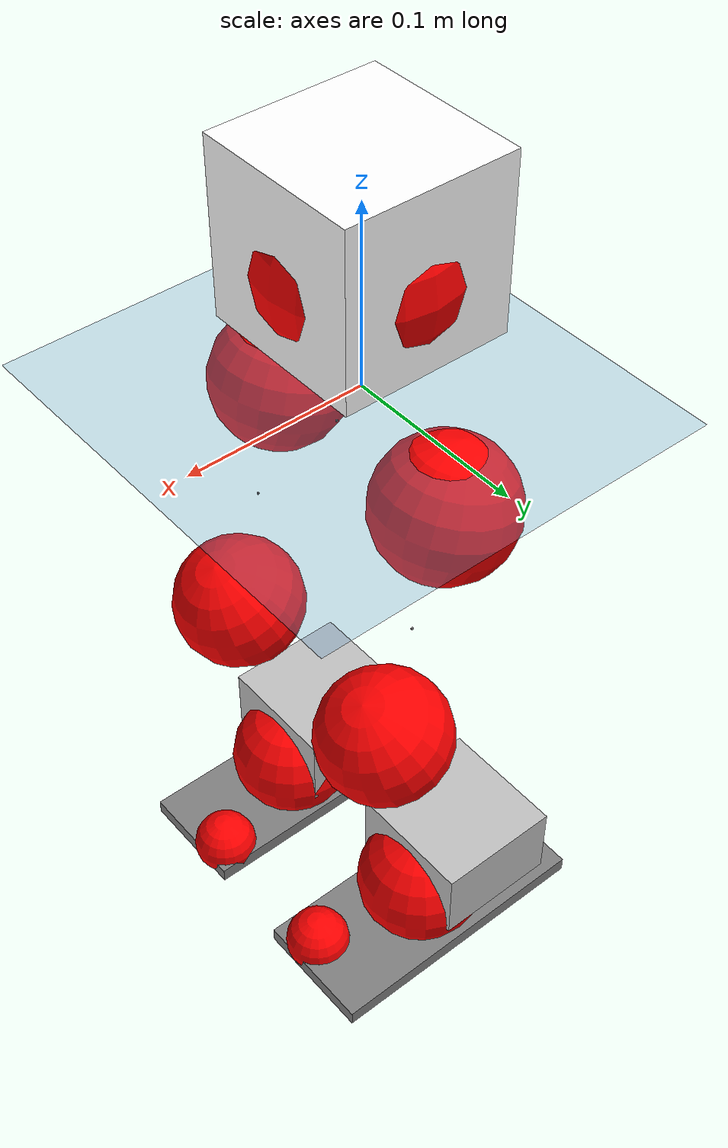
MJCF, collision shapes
<mujoco model="pi_12dof_release_v1">
  <compiler angle="radian" assetdir="assets" balanceinertia="true" inertiafromgeom="false"/>

  <option timestep="0.005" density="1.2" viscosity="2e-05"/>

  <size nkey="1"/>

  <visual>
    <quality shadowsize="8192"/>
    <map shadowclip="0.5"/>
  </visual>

  <default>
    <default class="/">
      <joint armature="0.01" damping="0.01" frictionloss="0.01"/>
      <geom contype="0" conaffinity="0" group="1" solref="-1000 -80"/>
      <site size="0.01 0.005 0.005" group="5"/>
      <general forcelimited="true" biastype="affine" gainprm="20" biasprm="0 -20 -0.5"/>
      <default class="foot">
        <geom size="0.0845 0.036 0.005" type="box" condim="6" group="4" priority="1" friction="0.9 0.2 0.2" solimp="0.015 1 0.005"/>
      </default>
      <default class="reward_collision_sphere">
        <geom group="5" rgba="1 0 0 1"/>
      </default>
    </default>
  </default>

  <asset>
    <texture type="skybox" colorspace="auto" name="//unnamed_texture_0" builtin="gradient" rgb1="0.95 0.95 0.95" rgb2="0.95 0.95 0.95" width="100" height="600"/>
    <texture type="2d" colorspace="auto" name="texplane" builtin="checker" rgb1="0.345 0.575 0.748" rgb2="0.345 0.575 0.748" markrgb="1 1 1" width="512" height="512"/>
    <material name="MatPlane" class="/" texture="texplane" texuniform="true" texrepeat="2 2" specular="0.9"/>
    <mesh name="baselink_1" class="/" file="baselink_1.STL"/>
    <mesh name="r_hip_pitch_link" class="/" file="r_hip_pitch_link.STL"/>
    <mesh name="r_hip_roll_link" class="/" file="r_hip_roll_link.STL"/>
    <mesh name="r_thigh_link" class="/" file="r_thigh_link.STL"/>
    <mesh name="r_calf_link" class="/" file="r_calf_link.STL"/>
    <mesh name="r_ankle_pitch_link" class="/" file="r_ankle_pitch_link.STL"/>
    <mesh name="r_ankle_roll_link" class="/" file="r_ankle_roll_link.STL"/>
    <mesh name="l_hip_pitch_link" class="/" file="l_hip_pitch_link.STL"/>
    <mesh name="l_hip_roll_link" class="/" file="l_hip_roll_link.STL"/>
    <mesh name="l_thigh_link" class="/" file="l_thigh_link.STL"/>
    <mesh name="l_calf_link" class="/" file="l_calf_link.STL"/>
    <mesh name="l_ankle_pitch_link" class="/" file="l_ankle_pitch_link.STL"/>
    <mesh name="l_ankle_roll_link" class="/" file="l_ankle_roll_link.STL"/>
  </asset>

  <worldbody>
    <geom name="floor" class="/" size="100 100 0.125" type="plane" group="0" material="MatPlane"/>
    <light name="toplight_shadow" class="/" pos="0 0 5" dir="0.0990148 0.0990148 -0.990148" type="directional" ambient="0.04 0.04 0.04" diffuse="0.55 0.55 0.55" specular="0.12 0.12 0.12"/>
    <light name="toplight_fill" class="/" pos="0 0 5" dir="0.0990148 0.0990148 -0.990148" type="directional" castshadow="false" ambient="0.04 0.04 0.04" diffuse="0.3 0.3 0.3" specular="0.08 0.08 0.08"/>
    <body name="trunk" pos="0.000344336 -0.000497252 0.000243769" quat="1 0.000126094 0.000126744 -7.58431e-05">
      <inertial pos="0.00215927 -0.000667564 0.041169" quat="0.697988 0.0123577 0.0102099 0.71593" mass="1.72979" diaginertia="0.00948375 0.00261378 0.00466108"/>
      <joint name="//unnamed_joint_0" type="free"/>
      <geom name="//unnamed_geom_1" class="/" type="mesh" density="0" rgba="1 1 1 1" mesh="baselink_1"/>
      <geom name="//unnamed_geom_2" class="/" size="0.0466228 0.0466228 0.0466228" pos="0 0 0.0817622" type="box" rgba="1 1 1 1"/>
      <geom name="//unnamed_geom_3" class="reward_collision_sphere" size="0.051285" pos="0 0 0.0715419"/>
      <site name="imu" class="/" pos="0.00108724 -0.00166491 -0.00478427" size="0.00932455"/>
      <camera name="track" class="/" pos="0 -1.5643 0" quat="0.707107 0.707107 0 0" mode="trackcom"/>
      <camera name="ego_camera" class="/" pos="0.0744891 0 0.183965" quat="-0.5 -0.5 0.5 0.5"/>
      <body name="r_hip_pitch_link" pos="0.000433334 -0.0175699 -0.0326334" quat="0.992202 -0.000202371 -0.124642 -8.22958e-05">
        <inertial pos="0.000412088 -0.0428638 -4.83122e-05" quat="-0.018983 0.70595 -0.0283708 0.707439" mass="0.299042" diaginertia="0.00010455 2.90127e-05 9.26479e-05"/>
        <joint name="r_hip_pitch_joint" class="/" pos="0 0 0" axis="-0.00649516 -0.999979 0.000724358" range="-1.73294 1.23352" armature="0.00929251" damping="0.0169146" frictionloss="0.00929207"/>
        <geom name="//unnamed_geom_4" class="/" type="mesh" density="0" rgba="0.75294 0.75294 0.75294 1" mesh="r_hip_pitch_link"/>
        <geom name="//unnamed_geom_5" class="/" size="0.000466228 0.000466228 0.000466228" type="box" rgba="0.75294 0.75294 0.75294 1"/>
        <body name="r_hip_roll_link" pos="0.00119264 -0.0435809 0.000484656" quat="1 -0.000294663 0.000263213 -0.000218334">
          <inertial pos="-0.00124544 -0.000378305 -0.0642488" quat="0.703605 -0.0786145 -0.0804998 0.701627" mass="0.314571" diaginertia="0.000323419 8.1674e-05 0.000143786"/>
          <joint name="r_hip_roll_joint" class="/" pos="0 0 0" axis="-1 0.000234209 0.000629177" range="-0.111705 0.499625" armature="0.00915184" damping="0.0115955" frictionloss="0.00960961"/>
          <geom name="//unnamed_geom_6" class="/" type="mesh" density="0" rgba="0.75294 0.75294 0.75294 1" mesh="r_hip_roll_link"/>
          <geom name="//unnamed_geom_7" class="/" size="0.000466228 0.000466228 0.000466228" type="box" rgba="0.75294 0.75294 0.75294 1"/>
          <geom name="//unnamed_geom_8" class="reward_collision_sphere" size="0.0372982"/>
          <body name="r_thigh_link" pos="-0.000192016 -0.00035376 -0.0710518" quat="1 9.91517e-05 -0.000135929 -0.000165329">
            <inertial pos="-0.000519747 0.000772842 -0.0484826" quat="0.738198 0.674576 0.00285899 0.00157062" mass="0.0892813" diaginertia="0.000120058 2.73815e-05 6.38499e-05"/>
            <joint name="r_thigh_joint" class="/" pos="0 0 0" axis="-0.00113485 -0.00278219 -0.999995" range="-0.314163 0.610818" armature="0.00936477" damping="0.00419956" frictionloss="0.00969911"/>
            <geom name="//unnamed_geom_9" class="/" type="mesh" density="0" rgba="0.75294 0.75294 0.75294 1" mesh="r_thigh_link"/>
            <geom name="//unnamed_geom_10" class="/" size="0.000466228 0.000466228 0.000466228" type="box" rgba="0.75294 0.75294 0.75294 1"/>
            <body name="r_calf_link" pos="-0.00121824 -0.000157515 -0.0719775" quat="0.947666 -6.83335e-05 0.319265 2.18474e-05">
              <inertial pos="0.000488066 -0.000922137 -0.0721896" quat="0.99995 -0.00540379 -0.001421 0.00835081" mass="0.669835" diaginertia="0.00345227 0.00104589 0.00019663"/>
              <joint name="r_calf_joint" class="/" pos="0 0 0" axis="0.00665606 -0.999972 -0.00349839" range="-1.64917 0.646357" armature="0.00892228" damping="0.006559" frictionloss="0.00910478"/>
              <geom name="//unnamed_geom_11" class="/" type="mesh" density="0" rgba="0.75294 0.75294 0.75294 1" mesh="r_calf_link"/>
              <geom name="//unnamed_geom_12" class="/" size="0.000466228 0.000466228 0.000466228" type="box" rgba="0.75294 0.75294 0.75294 1"/>
              <geom name="//unnamed_geom_13" class="reward_collision_sphere" size="0.0372982"/>
              <body name="r_ankle_pitch_link" pos="0.000640917 0.00122986 -0.143789" quat="0.980056 4.47881e-05 -0.198722 1.78337e-05">
                <inertial pos="0.00573238 0.004343 0.000189117" quat="0.00233521 0.707225 -0.00196977 0.706982" mass="0.142306" diaginertia="0.000295323 6.51777e-05 0.000133226"/>
                <joint name="r_ankle_pitch_joint" class="/" pos="0 0 0" axis="-0.00222931 -0.999995 0.00230067" range="-1.31069 0.498853" armature="0.00931295" damping="0.0053656" frictionloss="0.00962831"/>
                <geom name="//unnamed_geom_14" class="/" type="mesh" density="0" rgba="0.75294 0.75294 0.75294 1" mesh="r_ankle_pitch_link"/>
                <geom name="//unnamed_geom_15" class="/" size="0.0363658 0.0372982 0.0233114" type="box" rgba="0.75294 0.75294 0.75294 1"/>
                <body name="r_ankle_roll_link" pos="0.0755693 0.00166653 0.000273271" quat="1 -0.000349056 -0.000287798 -0.000402344">
                  <inertial pos="-0.0223494 0.000946522 -0.0149809" quat="0.561781 0.429658 0.434468 0.557704" mass="0.418436" diaginertia="0.0010755 0.00030068 0.000318533"/>
                  <joint name="r_ankle_roll_joint" class="/" pos="0 0 0" axis="-0.999989 0.00386685 -0.00256637" range="-0.151081 0.142782" armature="0.00947699" damping="0.0104779" frictionloss="0.00911787"/>
                  <geom name="//unnamed_geom_16" class="/" type="mesh" density="0" rgba="0.75294 0.75294 0.75294 1" mesh="r_ankle_roll_link"/>
                  <geom name="//unnamed_geom_17" class="/" type="mesh" rgba="0.75294 0.75294 0.75294 1" mesh="r_ankle_roll_link"/>
                  <geom name="right_foot" class="foot" size="0.0801901 0.0335597 0.00456034" pos="-0.0506526 0 -0.0449692"/>
                  <geom name="//unnamed_geom_19" class="reward_collision_sphere" size="0.0372982" pos="-0.0496594 0 -0.0204405"/>
                  <geom name="//unnamed_geom_20" class="reward_collision_sphere" size="0.0186491" pos="0.0148978 0.015643 -0.0408811"/>
                  <geom name="//unnamed_geom_21" class="reward_collision_sphere" size="0.0186491" pos="-0.119183 0.015643 -0.0408811"/>
                  <site name="right_foot" class="foot" pos="-0.0506526 0 -0.0449692" size="0.00932455"/>
                </body>
              </body>
            </body>
          </body>
        </body>
      </body>
      <body name="l_hip_pitch_link" pos="0.00134898 0.0187995 -0.0334506" quat="0.992223 8.472e-05 -0.124472 5.9947e-05">
        <inertial pos="0.0016379 0.040599 -0.00016443" quat="-0.0383876 0.705215 0.030169 0.707311" mass="0.319332" diaginertia="0.000123627 3.07889e-05 0.000112202"/>
        <joint name="l_hip_pitch_joint" class="/" pos="0 0 0" axis="0.00706796 0.999975 -0.000157507" range="-1.25925 1.76135" armature="0.00890261" damping="0.014516" frictionloss="0.00891972"/>
        <geom name="//unnamed_geom_22" class="/" type="mesh" density="0" rgba="0.75294 0.75294 0.75294 1" mesh="l_hip_pitch_link"/>
        <geom name="//unnamed_geom_23" class="/" size="0.000466228 0.000466228 0.000466228" type="box" rgba="0.75294 0.75294 0.75294 1"/>
        <body name="l_hip_roll_link" pos="-0.000847123 0.0431183 0.000420111" quat="1 -3.47094e-05 0.000377791 -9.79852e-05">
          <inertial pos="-0.00165798 0.000973919 -0.0625291" quat="0.698628 -0.0770465 -0.0784069 0.70699" mass="0.314461" diaginertia="0.000322614 8.03207e-05 0.000139916"/>
          <joint name="l_hip_roll_joint" class="/" pos="0 0 0" axis="-0.999985 -0.00342177 -0.00421349" range="-0.507102 0.103192" armature="0.00925097" damping="0.0075451" frictionloss="0.00976492"/>
          <geom name="//unnamed_geom_24" class="/" type="mesh" density="0" rgba="0.75294 0.75294 0.75294 1" mesh="l_hip_roll_link"/>
          <geom name="//unnamed_geom_25" class="/" size="0.000466228 0.000466228 0.000466228" type="box" rgba="0.75294 0.75294 0.75294 1"/>
          <geom name="//unnamed_geom_26" class="reward_collision_sphere" size="0.0372982"/>
          <body name="l_thigh_link" pos="0.000344808 -0.00019764 -0.0721139" quat="1 0.000113029 1.60911e-05 0.000539439">
            <inertial pos="0.000859623 -0.00146681 -0.047277" quat="0.672083 0.740474 0.000182189 -0.00147044" mass="0.0909275" diaginertia="0.00012106 2.80202e-05 6.46112e-05"/>
            <joint name="l_thigh_joint" class="/" pos="0 0 0" axis="1.48998e-05 -0.000102093 -1" range="-0.617603 0.291988" armature="0.00937294" damping="0.00123341" frictionloss="0.0093086"/>
            <geom name="//unnamed_geom_27" class="/" type="mesh" density="0" rgba="0.75294 0.75294 0.75294 1" mesh="l_thigh_link"/>
            <geom name="//unnamed_geom_28" class="/" size="0.000466228 0.000466228 0.000466228" type="box" rgba="0.75294 0.75294 0.75294 1"/>
            <body name="l_calf_link" pos="-0.0012918 -0.000609128 -0.0715361" quat="0.947677 6.49071e-05 0.31923 7.98471e-05">
              <inertial pos="-0.000448009 0.00146127 -0.0719235" quat="0.999981 0.00249757 -0.00436458 0.00358558" mass="0.654757" diaginertia="0.00334114 0.00100723 0.000191229"/>
              <joint name="l_calf_joint" class="/" pos="0 0 0" axis="-0.00232169 0.999992 -0.00315247" range="-0.664112 1.64297" armature="0.00933708" damping="0.00717063" frictionloss="0.00934638"/>
              <geom name="//unnamed_geom_29" class="/" type="mesh" density="0" rgba="0.75294 0.75294 0.75294 1" mesh="l_calf_link"/>
              <geom name="//unnamed_geom_30" class="/" size="0.000466228 0.000466228 0.000466228" type="box" rgba="0.75294 0.75294 0.75294 1"/>
              <geom name="//unnamed_geom_31" class="reward_collision_sphere" size="0.0372982"/>
              <body name="l_ankle_pitch_link" pos="0.00081386 0.000482601 -0.142522" quat="0.980091 6.01306e-05 -0.198551 -7.47385e-05">
                <inertial pos="0.00483298 -0.000560661 0.000254255" quat="-0.00490567 0.705539 0.00783763 0.708611" mass="0.142332" diaginertia="0.000299169 6.50223e-05 0.000136234"/>
                <joint name="l_ankle_pitch_joint" class="/" pos="0 0 0" axis="0.00249223 0.999997 0.000595296" range="-0.521441 1.28605" armature="0.00923993" damping="0.00246018" frictionloss="0.00956474"/>
                <geom name="//unnamed_geom_32" class="/" type="mesh" density="0" rgba="0.75294 0.75294 0.75294 1" mesh="l_ankle_pitch_link"/>
                <geom name="//unnamed_geom_33" class="/" size="0.0363658 0.0372982 0.0233114" type="box" rgba="0.75294 0.75294 0.75294 1"/>
                <body name="l_ankle_roll_link" pos="0.0751031 -3.89719e-05 0.00022267" quat="1 -4.05383e-05 -1.3703e-05 -6.59911e-06">
                  <inertial pos="-0.0249889 -0.00179344 -0.0140449" quat="0.55993 0.429438 0.434198 0.55994" mass="0.420594" diaginertia="0.00110474 0.000302423 0.000315517"/>
                  <joint name="l_ankle_roll_joint" class="/" pos="0 0 0" axis="-1 0.000545204 -0.000543344" range="-0.143399 0.170009" armature="0.00949713" damping="0.0110447" frictionloss="0.00944024"/>
                  <geom name="//unnamed_geom_34" class="/" type="mesh" density="0" rgba="0.75294 0.75294 0.75294 1" mesh="l_ankle_roll_link"/>
                  <geom name="//unnamed_geom_35" class="/" type="mesh" rgba="0.75294 0.75294 0.75294 1" mesh="l_ankle_roll_link"/>
                  <geom name="left_foot" class="foot" size="0.082402 0.0359905 0.00469993" pos="-0.0506526 0 -0.0449692"/>
                  <geom name="//unnamed_geom_37" class="reward_collision_sphere" size="0.0372982" pos="-0.0496594 0 -0.0204405"/>
                  <geom name="//unnamed_geom_38" class="reward_collision_sphere" size="0.0186491" pos="0.0148978 -0.015643 -0.0408811"/>
                  <geom name="//unnamed_geom_39" class="reward_collision_sphere" size="0.0186491" pos="-0.119183 -0.015643 -0.0408811"/>
                  <site name="left_foot" class="foot" pos="-0.0506526 0 -0.0449692" size="0.00932455"/>
                </body>
              </body>
            </body>
          </body>
        </body>
      </body>
    </body>
  </worldbody>

  <contact>
    <pair class="/" geom1="floor" geom2="right_foot" name="//unnamed_contact_1"/>
    <pair class="/" geom1="floor" geom2="left_foot" name="//unnamed_contact_0"/>
  </contact>

  <actuator>
    <general name="r_hip_pitch_joint" class="/" joint="r_hip_pitch_joint" forcerange="-19.0388 19.0388" gainprm="18.7249" biasprm="0 -18.7249 -0.466209"/>
    <general name="r_hip_roll_joint" class="/" joint="r_hip_roll_joint" forcerange="-19.9888 19.9888" gainprm="18.7249" biasprm="0 -18.7249 -0.466209"/>
    <general name="r_thigh_joint" class="/" joint="r_thigh_joint" forcerange="-19.9362 19.9362" gainprm="18.7249" biasprm="0 -18.7249 -0.466209"/>
    <general name="r_calf_joint" class="/" joint="r_calf_joint" forcerange="-20.314 20.314" gainprm="18.7249" biasprm="0 -18.7249 -0.466209"/>
    <general name="r_ankle_pitch_joint" class="/" joint="r_ankle_pitch_joint" forcerange="-19.3808 19.3808" gainprm="18.7249" biasprm="0 -18.7249 -0.466209"/>
    <general name="r_ankle_roll_joint" class="/" joint="r_ankle_roll_joint" forcerange="-19.6324 19.6324" gainprm="18.7249" biasprm="0 -18.7249 -0.466209"/>
    <general name="l_hip_pitch_joint" class="/" joint="l_hip_pitch_joint" forcerange="-19.5854 19.5854" gainprm="18.7249" biasprm="0 -18.7249 -0.466209"/>
    <general name="l_hip_roll_joint" class="/" joint="l_hip_roll_joint" forcerange="-19.6309 19.6309" gainprm="18.7249" biasprm="0 -18.7249 -0.466209"/>
    <general name="l_thigh_joint" class="/" joint="l_thigh_joint" forcerange="-19.075 19.075" gainprm="18.7249" biasprm="0 -18.7249 -0.466209"/>
    <general name="l_calf_joint" class="/" joint="l_calf_joint" forcerange="-19.5504 19.5504" gainprm="18.7249" biasprm="0 -18.7249 -0.466209"/>
    <general name="l_ankle_pitch_joint" class="/" joint="l_ankle_pitch_joint" forcerange="-19.6959 19.6959" gainprm="18.7249" biasprm="0 -18.7249 -0.466209"/>
    <general name="l_ankle_roll_joint" class="/" joint="l_ankle_roll_joint" forcerange="-18.8806 18.8806" gainprm="18.7249" biasprm="0 -18.7249 -0.466209"/>
  </actuator>

  <sensor>
    <gyro site="imu" name="imu_angular_velocity"/>
    <velocimeter site="imu" name="imu_linear_velocity"/>
    <framelinvel objtype="site" objname="left_foot" name="left_foot_global_linear_velocity"/>
    <framelinvel objtype="site" objname="right_foot" name="right_foot_global_linear_velocity"/>
  </sensor>

  <keyframe>
    <key name="home" qpos="0 0 0.291 1 0 0 0 0.4 0 0 -0.8 0.4 0 -0.4 0 0 0.8 -0.4 0"/>
  </keyframe>
</mujoco>
